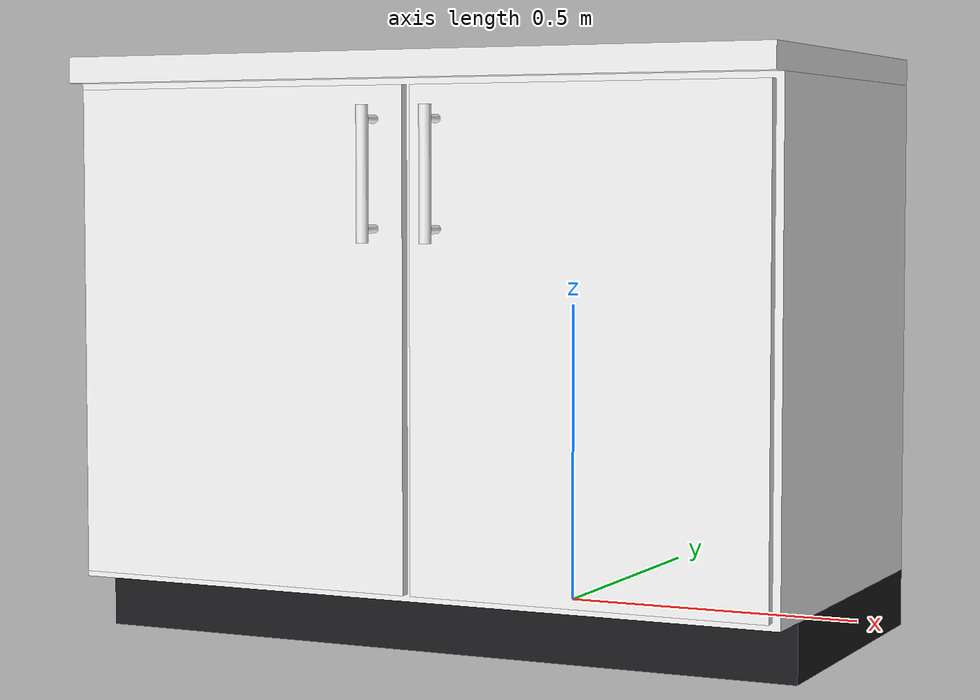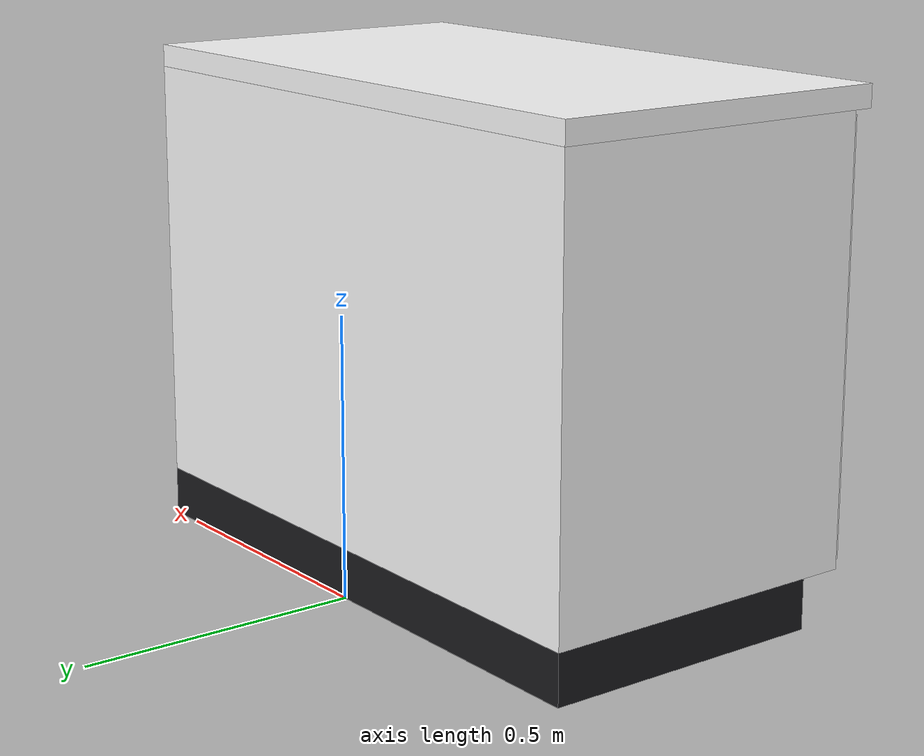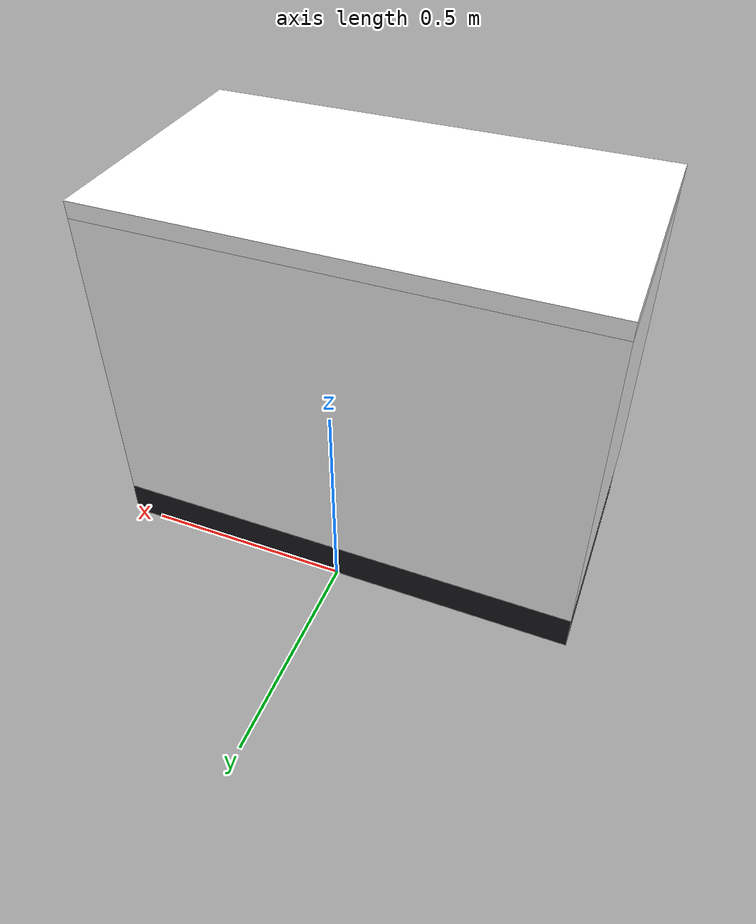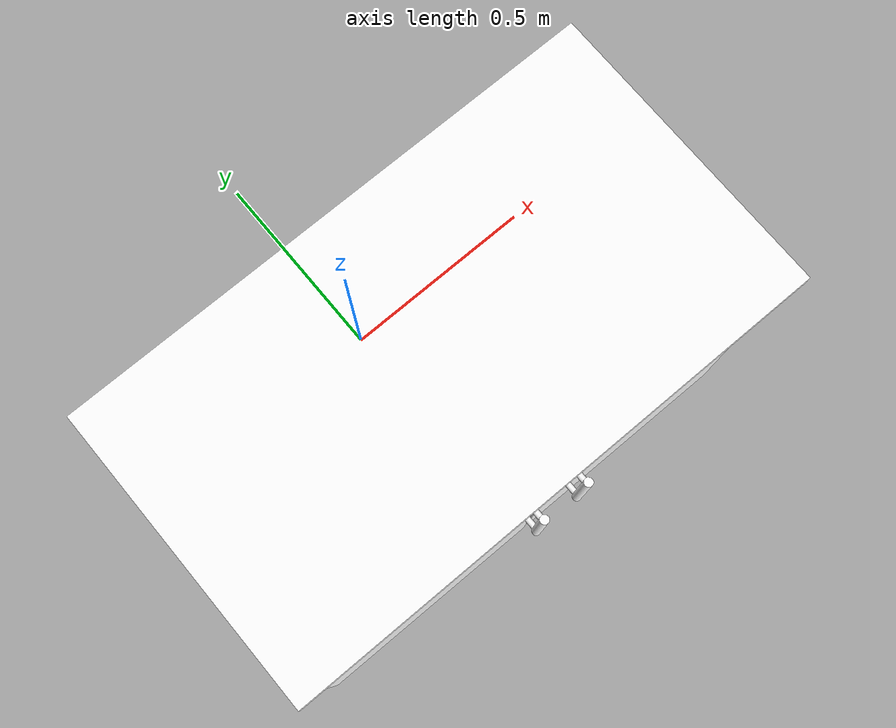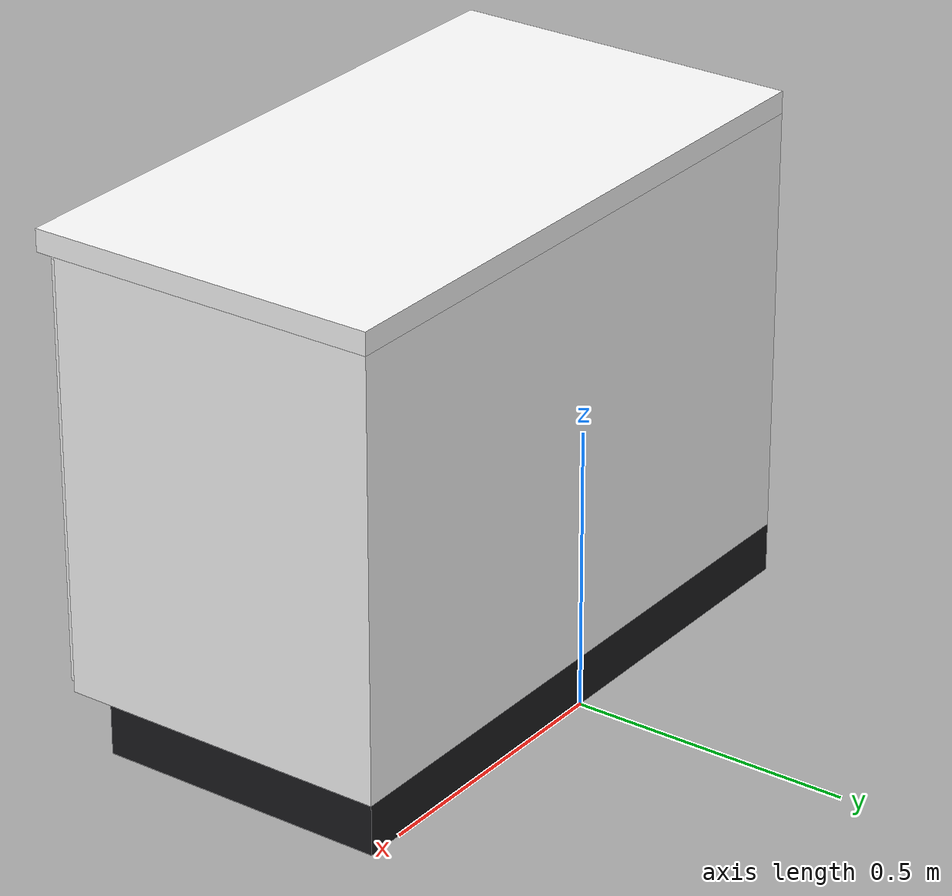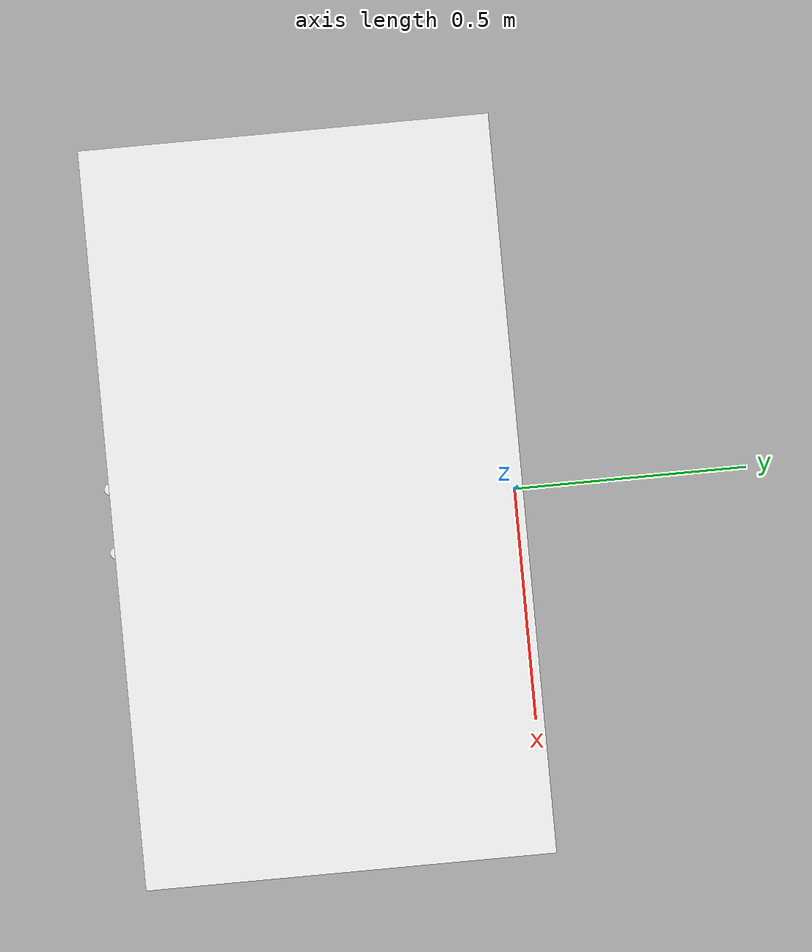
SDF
<?xml version="1.0"?>
<sdf version="1.6">
  <model name="kitchen_base_run_w">
    <static>true</static>
    <link name="link">
      <visual name="toe_kick">
        <pose>0 -0.262 0.0445 0 0 0</pose>
        <geometry><box><size>1.144 0.524 0.089</size></box></geometry>
        <material><ambient>0.11 0.11 0.12 1</ambient><diffuse>0.11 0.11 0.12 1</diffuse><specular>0.05 0.05 0.05 1</specular><emissive>0 0 0 1</emissive></material>
      </visual>
      <visual name="carcass0">
        <pose>0 -0.3 0.4745 0 0 0</pose>
        <geometry><box><size>1.144 0.6 0.771</size></box></geometry>
        <material><pbr><metal><albedo_map>textures/wood.png</albedo_map><metalness>0.0</metalness><roughness>0.75</roughness></metal></pbr><ambient>1 1 1 1</ambient><diffuse>1 1 1 1</diffuse><specular>0.25 0.25 0.25 1</specular><emissive>0 0 0 1</emissive></material>
      </visual>
      <visual name="counter">
        <pose>0 -0.3175 0.88 0 0 0</pose>
        <geometry><box><size>1.144 0.635 0.04</size></box></geometry>
        <material><pbr><metal><albedo_map>textures/marble.png</albedo_map><metalness>0.1</metalness><roughness>0.25</roughness></metal></pbr><ambient>1 1 1 1</ambient><diffuse>1 1 1 1</diffuse><specular>0.25 0.25 0.25 1</specular><emissive>0 0 0 1</emissive></material>
      </visual>
      <visual name="door0">
        <pose>-0.283 -0.608 0.475 0 0 0</pose>
        <geometry><box><size>0.554 0.016 0.75</size></box></geometry>
        <material><pbr><metal><albedo_map>textures/wood.png</albedo_map><metalness>0.0</metalness><roughness>0.55</roughness></metal></pbr><ambient>1 1 1 1</ambient><diffuse>1 1 1 1</diffuse><specular>0.25 0.25 0.25 1</specular><emissive>0 0 0 1</emissive></material>
      </visual>
      <visual name="door0_handle_bar">
        <pose>-0.051 -0.654 0.72 0 0 0</pose>
        <geometry><cylinder><radius>0.009</radius><length>0.2</length></cylinder></geometry>
        <material><pbr><metal><albedo_map>textures/stainless.png</albedo_map><metalness>0.25</metalness><roughness>0.15</roughness></metal></pbr><ambient>1 1 1 1</ambient><diffuse>1 1 1 1</diffuse><specular>1 1 1 1</specular><emissive>0 0 0 1</emissive></material>
      </visual>
      <visual name="door0_handle_post0">
        <pose>-0.051 -0.635 0.64 1.5708 0 0</pose>
        <geometry><cylinder><radius>0.0063</radius><length>0.038</length></cylinder></geometry>
        <material><pbr><metal><albedo_map>textures/stainless.png</albedo_map><metalness>0.25</metalness><roughness>0.15</roughness></metal></pbr><ambient>1 1 1 1</ambient><diffuse>1 1 1 1</diffuse><specular>1 1 1 1</specular><emissive>0 0 0 1</emissive></material>
      </visual>
      <visual name="door0_handle_post1">
        <pose>-0.051 -0.635 0.8 1.5708 0 0</pose>
        <geometry><cylinder><radius>0.0063</radius><length>0.038</length></cylinder></geometry>
        <material><pbr><metal><albedo_map>textures/stainless.png</albedo_map><metalness>0.25</metalness><roughness>0.15</roughness></metal></pbr><ambient>1 1 1 1</ambient><diffuse>1 1 1 1</diffuse><specular>1 1 1 1</specular><emissive>0 0 0 1</emissive></material>
      </visual>
      <visual name="door1">
        <pose>0.283 -0.608 0.475 0 0 0</pose>
        <geometry><box><size>0.554 0.016 0.75</size></box></geometry>
        <material><pbr><metal><albedo_map>textures/wood.png</albedo_map><metalness>0.0</metalness><roughness>0.55</roughness></metal></pbr><ambient>1 1 1 1</ambient><diffuse>1 1 1 1</diffuse><specular>0.25 0.25 0.25 1</specular><emissive>0 0 0 1</emissive></material>
      </visual>
      <visual name="door1_handle_bar">
        <pose>0.051 -0.654 0.72 0 0 0</pose>
        <geometry><cylinder><radius>0.009</radius><length>0.2</length></cylinder></geometry>
        <material><pbr><metal><albedo_map>textures/stainless.png</albedo_map><metalness>0.25</metalness><roughness>0.15</roughness></metal></pbr><ambient>1 1 1 1</ambient><diffuse>1 1 1 1</diffuse><specular>1 1 1 1</specular><emissive>0 0 0 1</emissive></material>
      </visual>
      <visual name="door1_handle_post0">
        <pose>0.051 -0.635 0.64 1.5708 0 0</pose>
        <geometry><cylinder><radius>0.0063</radius><length>0.038</length></cylinder></geometry>
        <material><pbr><metal><albedo_map>textures/stainless.png</albedo_map><metalness>0.25</metalness><roughness>0.15</roughness></metal></pbr><ambient>1 1 1 1</ambient><diffuse>1 1 1 1</diffuse><specular>1 1 1 1</specular><emissive>0 0 0 1</emissive></material>
      </visual>
      <visual name="door1_handle_post1">
        <pose>0.051 -0.635 0.8 1.5708 0 0</pose>
        <geometry><cylinder><radius>0.0063</radius><length>0.038</length></cylinder></geometry>
        <material><pbr><metal><albedo_map>textures/stainless.png</albedo_map><metalness>0.25</metalness><roughness>0.15</roughness></metal></pbr><ambient>1 1 1 1</ambient><diffuse>1 1 1 1</diffuse><specular>1 1 1 1</specular><emissive>0 0 0 1</emissive></material>
      </visual>
      <collision name="toe_kick">
        <pose>0 -0.262 0.0445 0 0 0</pose>
        <geometry><box><size>1.144 0.524 0.089</size></box></geometry>
      </collision>
      <collision name="body">
        <pose>0 -0.308 0.4945 0 0 0</pose>
        <geometry><box><size>1.144 0.616 0.811</size></box></geometry>
      </collision>
    </link>
    <allow_auto_disable>1</allow_auto_disable>
  </model>
</sdf>
